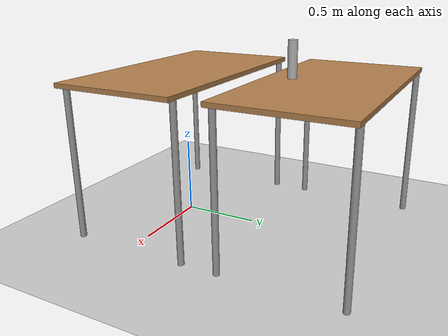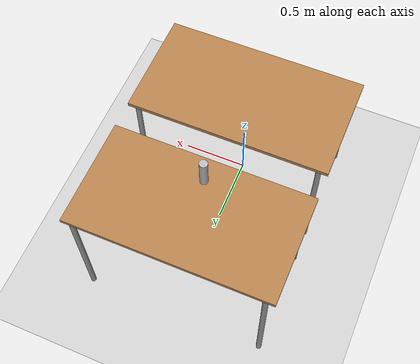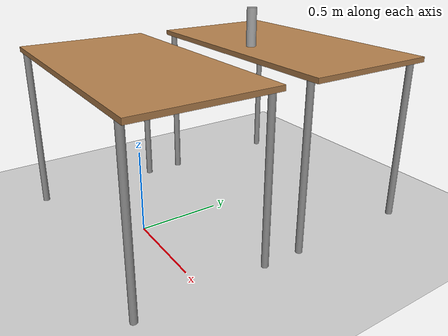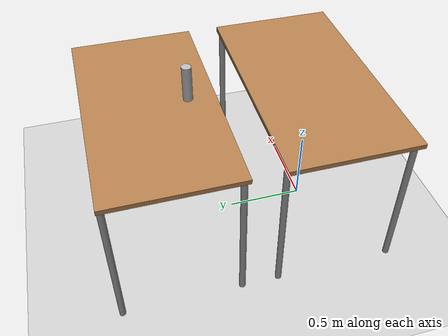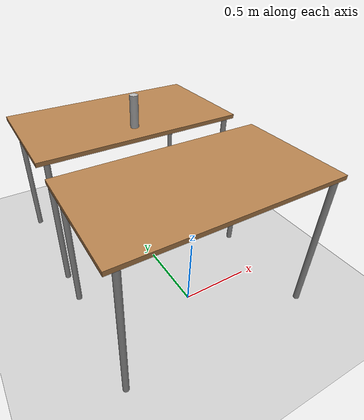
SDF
<sdf version="1.6">
 <world name="default">
  <light name="sun" type="directional">
   <pose>0 0 10 0 -0 0</pose>
   <diffuse>0.8 0.8 0.8 1</diffuse>
   <specular>0.2 0.2 0.2 1</specular>
   <attenuation>
    <range>1000</range>
    <constant>0.9</constant>
    <linear>0.01</linear>
    <quadratic>0.001</quadratic>
   </attenuation>
   <direction>-0.5 0.1 -0.9</direction>
  </light>
  <model name="ground_plane">
   <static>1</static>
   <link name="link">
    <collision name="collision">
     <geometry><plane><normal>0 0 1</normal><size>100 100</size></plane></geometry>
     <surface>
      <contact><collide_bitmask>65535</collide_bitmask></contact>
      <friction><ode><mu>100</mu><mu2>50</mu2></ode></friction>
     </surface>
    </collision>
    <visual name="visual">
     <cast_shadows>0</cast_shadows>
     <geometry><plane><normal>0 0 1</normal><size>100 100</size></plane></geometry>
     <material>
      <script><uri>file://media/materials/scripts/gazebo.material</uri><name>Gazebo/Grey</name></script>
     </material>
    </visual>
   </link>
  </model>
  <gravity>0 0 -9.8</gravity>
  <magnetic_field>6e-06 2.3e-05 -4.2e-05</magnetic_field>
  <atmosphere type="adiabatic"/>
  <physics name="default_physics" default="0" type="ode">
   <max_step_size>0.001</max_step_size>
   <real_time_factor>1</real_time_factor>
   <real_time_update_rate>1000</real_time_update_rate>
  </physics>
  <scene><ambient>0.4 0.4 0.4 1</ambient><background>0.7 0.7 0.7 1</background><shadows>1</shadows></scene>
  <audio><device>default</device></audio>
  <spherical_coordinates>
   <surface_model>EARTH_WGS84</surface_model>
   <latitude_deg>0</latitude_deg>
   <longitude_deg>0</longitude_deg>
   <elevation>0</elevation>
   <heading_deg>0</heading_deg>
  </spherical_coordinates>
  <model name="table">
   <static>1</static>
   <link name="link">
    <collision name="surface">
     <pose>0 0 1 0 -0 0</pose>
     <geometry><box><size>1.5 0.8 0.03</size></box></geometry>
     <surface><friction><ode><mu>0.6</mu><mu2>0.6</mu2></ode></friction></surface>
    </collision>
    <visual name="visual1">
     <pose>0 0 1 0 -0 0</pose>
     <geometry><box><size>1.5 0.8 0.03</size></box></geometry>
     <material>
      <script><uri>file://media/materials/scripts/gazebo.material</uri><name>Gazebo/Wood</name></script>
     </material>
    </visual>
    <collision name="front_left_leg">
     <pose>0.68 0.38 0.5 0 -0 0</pose>
     <geometry><cylinder><radius>0.02</radius><length>1</length></cylinder></geometry>
    </collision>
    <visual name="front_left_leg">
     <pose>0.68 0.38 0.5 0 -0 0</pose>
     <geometry><cylinder><radius>0.02</radius><length>1</length></cylinder></geometry>
     <material>
      <script><uri>file://media/materials/scripts/gazebo.material</uri><name>Gazebo/Grey</name></script>
     </material>
    </visual>
    <collision name="front_right_leg">
     <pose>0.68 -0.38 0.5 0 -0 0</pose>
     <geometry><cylinder><radius>0.02</radius><length>1</length></cylinder></geometry>
    </collision>
    <visual name="front_right_leg">
     <pose>0.68 -0.38 0.5 0 -0 0</pose>
     <geometry><cylinder><radius>0.02</radius><length>1</length></cylinder></geometry>
     <material>
      <script><uri>file://media/materials/scripts/gazebo.material</uri><name>Gazebo/Grey</name></script>
     </material>
    </visual>
    <collision name="back_right_leg">
     <pose>-0.68 -0.38 0.5 0 -0 0</pose>
     <geometry><cylinder><radius>0.02</radius><length>1</length></cylinder></geometry>
    </collision>
    <visual name="back_right_leg">
     <pose>-0.68 -0.38 0.5 0 -0 0</pose>
     <geometry><cylinder><radius>0.02</radius><length>1</length></cylinder></geometry>
     <material>
      <script><uri>file://media/materials/scripts/gazebo.material</uri><name>Gazebo/Grey</name></script>
     </material>
    </visual>
    <collision name="back_left_leg">
     <pose>-0.68 0.38 0.5 0 -0 0</pose>
     <geometry><cylinder><radius>0.02</radius><length>1</length></cylinder></geometry>
    </collision>
    <visual name="back_left_leg">
     <pose>-0.68 0.38 0.5 0 -0 0</pose>
     <geometry><cylinder><radius>0.02</radius><length>1</length></cylinder></geometry>
     <material>
      <script><uri>file://media/materials/scripts/gazebo.material</uri><name>Gazebo/Grey</name></script>
     </material>
    </visual>
   </link>
  </model>
  <model name="table_0">
   <static>1</static>
   <link name="link">
    <collision name="surface">
     <pose>0 0 1 0 -0 0</pose>
     <geometry><box><size>1.5 0.8 0.03</size></box></geometry>
     <surface><friction><ode><mu>0.6</mu><mu2>0.6</mu2></ode></friction></surface>
    </collision>
    <visual name="visual1">
     <pose>0 0 1 0 -0 0</pose>
     <geometry><box><size>1.5 0.8 0.03</size></box></geometry>
     <material>
      <script><uri>file://media/materials/scripts/gazebo.material</uri><name>Gazebo/Wood</name></script>
     </material>
    </visual>
    <collision name="front_left_leg">
     <pose>0.68 0.38 0.5 0 -0 0</pose>
     <geometry><cylinder><radius>0.02</radius><length>1</length></cylinder></geometry>
    </collision>
    <visual name="front_left_leg">
     <pose>0.68 0.38 0.5 0 -0 0</pose>
     <geometry><cylinder><radius>0.02</radius><length>1</length></cylinder></geometry>
     <material>
      <script><uri>file://media/materials/scripts/gazebo.material</uri><name>Gazebo/Grey</name></script>
     </material>
    </visual>
    <collision name="front_right_leg">
     <pose>0.68 -0.38 0.5 0 -0 0</pose>
     <geometry><cylinder><radius>0.02</radius><length>1</length></cylinder></geometry>
    </collision>
    <visual name="front_right_leg">
     <pose>0.68 -0.38 0.5 0 -0 0</pose>
     <geometry><cylinder><radius>0.02</radius><length>1</length></cylinder></geometry>
     <material>
      <script><uri>file://media/materials/scripts/gazebo.material</uri><name>Gazebo/Grey</name></script>
     </material>
    </visual>
    <collision name="back_right_leg">
     <pose>-0.68 -0.38 0.5 0 -0 0</pose>
     <geometry><cylinder><radius>0.02</radius><length>1</length></cylinder></geometry>
    </collision>
    <visual name="back_right_leg">
     <pose>-0.68 -0.38 0.5 0 -0 0</pose>
     <geometry><cylinder><radius>0.02</radius><length>1</length></cylinder></geometry>
     <material>
      <script><uri>file://media/materials/scripts/gazebo.material</uri><name>Gazebo/Grey</name></script>
     </material>
    </visual>
    <collision name="back_left_leg">
     <pose>-0.68 0.38 0.5 0 -0 0</pose>
     <geometry><cylinder><radius>0.02</radius><length>1</length></cylinder></geometry>
    </collision>
    <visual name="back_left_leg">
     <pose>-0.68 0.38 0.5 0 -0 0</pose>
     <geometry><cylinder><radius>0.02</radius><length>1</length></cylinder></geometry>
     <material>
      <script><uri>file://media/materials/scripts/gazebo.material</uri><name>Gazebo/Grey</name></script>
     </material>
    </visual>
   </link>
   <pose>0 1 0 0 -0 0</pose>
  </model>
  <model name="beer">
   <static>0</static>
   <link name="link">
    <pose>0 0 0.115 0 -0 0</pose>
    <inertial>
     <mass>1</mass>
     <inertia>
      <ixx>0.004633</ixx>
      <ixy>0</ixy>
      <ixz>0</ixz>
      <iyy>0.004633</iyy>
      <iyz>0</iyz>
      <izz>0.00045</izz>
     </inertia>
    </inertial>
    <collision name="collision">
     <geometry><cylinder><radius>0.030</radius><length>0.23</length></cylinder></geometry>
     <surface><friction><ode><mu>1</mu><mu2>1</mu2></ode></friction></surface>
    </collision>
    <visual name="visual">
     <geometry><cylinder><radius>0.030</radius><length>0.23</length></cylinder></geometry>
     <material>
      <script>
       <uri>model://beer/materials/scripts</uri>
       <uri>model://beer/materials/textures</uri>
       <name>Beer/Diffuse</name>
      </script>
     </material>
    </visual>
   </link>
   <pose>0.00016 0.770131 1.01499 1e-06 -2.7e-05 0.00082</pose>
  </model>
 </world>
</sdf>
